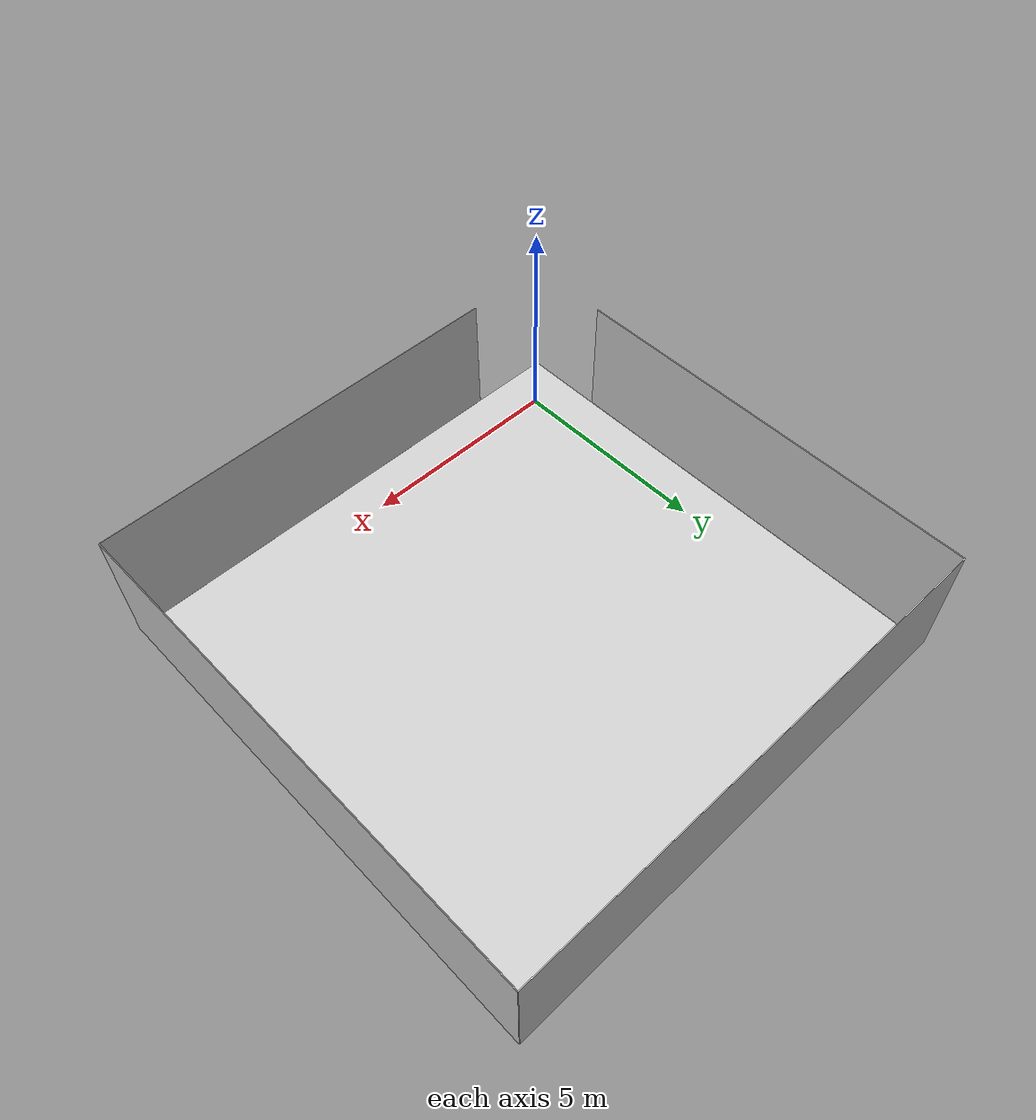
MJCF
<mujoco model="navigation_arena">
  <asset>
    <texture builtin="gradient" height="256" rgb1=".9 .9 1." rgb2=".2 .3 .4" type="skybox" width="256"/>
    <texture file="../textures/light-gray-floor-tile.png" type="2d" name="texplane"/>
    <material name="floorplane" reflectance="0.01" shininess="0.0" specular="0.0" texrepeat="2 2" texture="texplane" texuniform="true"/>
    <!-- plaster walls -->
    <texture file="../textures/light-gray-plaster.png" type="2d" name="tex-light-gray-plaster"/>
    <material name="walls_mat" reflectance="0.0" shininess="0.1" specular="0.1" texrepeat="3 3" texture="tex-light-gray-plaster" texuniform="true" />

  </asset>
  <worldbody>
    <!-- Floor -->
    <geom condim="3" group="1" material="floorplane" name="floor" pos="5 5 0" size="6 6 .125" type="plane"/>
    <!-- Walls (visual only) -->
    <geom pos=" 6 -1 1.5" quat="0.7071 -0.7071 0 0" size="5 1.5 0.01" type="box" conaffinity="0" contype="0" group="0" name="wall_left_visual" material="walls_mat"/>
    <geom pos=" 5 11 1.5" quat="0.7071 -0.7071 0 0" size="6 1.5 0.01" type="box" conaffinity="0" contype="0" group="0" name="wall_right_visual" material="walls_mat"/>
    <geom pos="-1  6 1.5" quat="0.5 0.5 0.5 0.5" size="5 1.5 0.01" type="box" conaffinity="0" contype="0" group="0" name="wall_rear_visual" material="walls_mat"/>
    <geom pos="11  5 1.5" quat="0.5 0.5 -0.5 -0.5" size="6 1.5 0.01" type="box" conaffinity="0" contype="0" group="0" name="wall_front_visual" material="walls_mat"/>
    <light pos="1.0 1.0 1.5" dir="-0.2 -0.2 -1" specular="0.3 0.3 0.3" directional="true" castshadow="false"/>
    <!-- front view -->
    <camera mode="fixed" name="frontview" pos="1.6 0 1.45" quat="0.56 0.43 0.43 0.56"/>
    <!-- bird view -->
    <camera mode="fixed" name="birdview" pos="5.0 5.0 15" quat="0.7071 0 0 0.7071"/>
    <!-- agent view -->
    <camera mode="fixed" name="agentview" pos="0.5 0 1.35" quat="0.653 0.271 0.271 0.653"/>
    <!-- side view -->
    <camera mode="fixed" name="sideview" pos="-0.05651774593317116 1.2761224129427358 1.4879572214102434" quat="0.009905065491771751 0.006877963156909582 0.5912228352893879 0.806418094001364" />
  </worldbody>
</mujoco>
